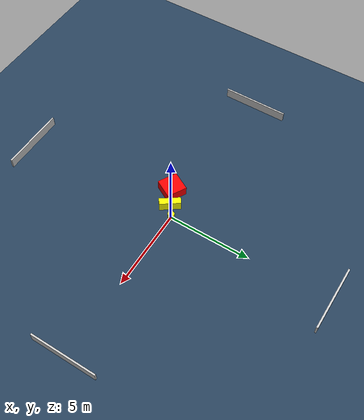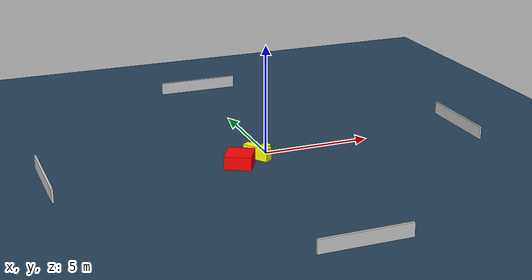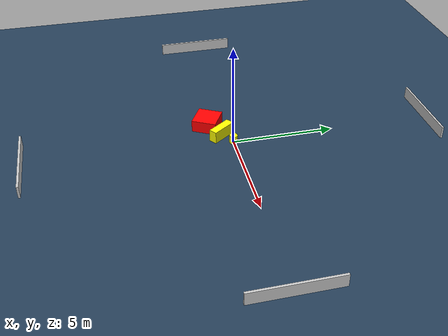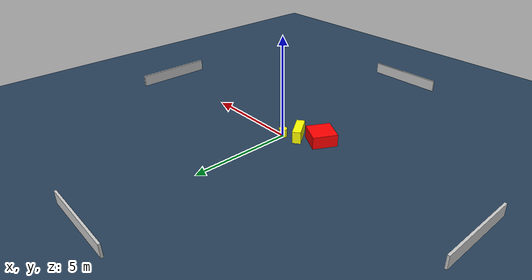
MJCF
<?xml version="1.0" ?>
<mujoco model="generated_environment">
  <option timestep="0.01" integrator="RK4" cone="elliptic"/>
  <default>
    <geom density="1"/>
  </default>
  <asset>
    <texture builtin="gradient" height="3072" name="skybox" rgb1="0.3 0.5 0.7" rgb2="0 0 0" type="skybox" width="512"/>
    <texture builtin="checker" height="300" name="groundplane" rgb1="0.2 0.3 0.4" rgb2="0.1 0.2 0.3" type="2d" width="300"/>
    <material name="groundplane" reflectance="0.2" texrepeat="5 5" texture="groundplane"/>
  </asset>
  <worldbody>
    <light dir="0 0 -1" directional="true" pos="0 0 1.5"/>
    <geom condim="3" friction="0.5 0.005 0.001" material="groundplane" name="floor" pos="0 0 0" size="0 0 0.05" type="plane"/>
    <body name="walls">
      <geom name="wall_1" condim="4" pos="-10.0 0.0 0.3" rgba="0.800000011920929 0.800000011920929 0.800000011920929 1.0" size="0.05 2.0 0.3" type="box"/>
      <geom name="wall_2" condim="4" pos="10.0 0.0 0.3" rgba="0.800000011920929 0.800000011920929 0.800000011920929 1.0" size="0.05 2.0 0.3" type="box"/>
      <geom name="wall_3" condim="4" pos="0.0 -10.0 0.3" rgba="0.800000011920929 0.800000011920929 0.800000011920929 1.0" size="2.0 0.05 0.3" type="box"/>
      <geom name="wall_4" condim="4" pos="0.0 10.0 0.3" rgba="0.800000011920929 0.800000011920929 0.800000011920929 1.0" size="2.0 0.05 0.3" type="box"/>
    </body>
    <body name="robot">
      <joint name="joint_x" type="slide" pos="0 0 0" axis="1 0 0"/>
      <joint name="joint_y" type="slide" pos="0 0 0" axis="0 1 0"/>
      <geom name="robot" type="cylinder" pos="0.0 0.0 0.2" size="0.2 0.2 0.0" mass="5.0" friction="1.0 0.005 0.0001" condim="4" rgba="1.0 1.0 0.0 1.0"/>
    </body>
    <body name="obstacle_1_movable">
      <geom name="obstacle_1_movable" condim="4" pos="-0.6028199004025028 -0.46058350347644106 0.3" euler="0 0 125.77787093337915" friction="0.0 0.005 0.001" rgba="1.0 1.0 0.0 1.0" size="0.6330288834262907 0.20416438686119606 0.3" type="box" mass="0.1"/>
      <joint type="free"/>
    </body>
    <body name="obstacle_2_static">
      <geom name="obstacle_2_static" condim="4" pos="-1.6285221455496914 -0.9655844754443833 0.3" euler="0 0 151.31796041550646" friction="0.0 0.005 0.001" rgba="1.0 0.0 0.0 1.0" size="0.6098788457748721 0.6071390327174999 0.3" type="box"/>
    </body>
  </worldbody>
  <actuator>
    <motor name="actuator_x" joint="joint_x" gear="1" ctrlrange="-1 1"/>
    <motor name="actuator_y" joint="joint_y" gear="1" ctrlrange="-1 1"/>
  </actuator>
</mujoco>
